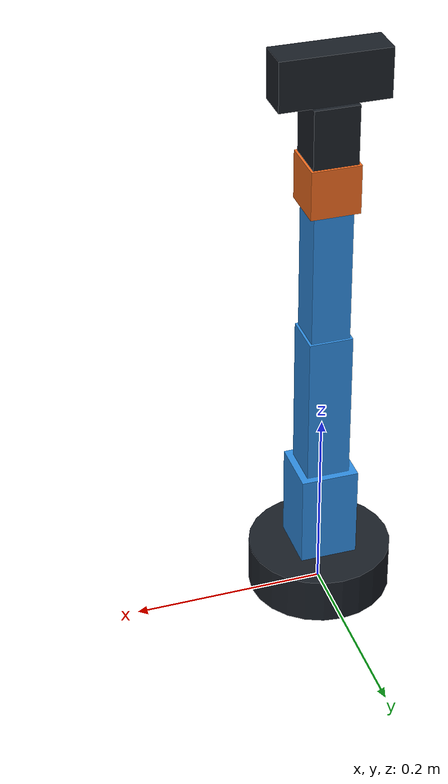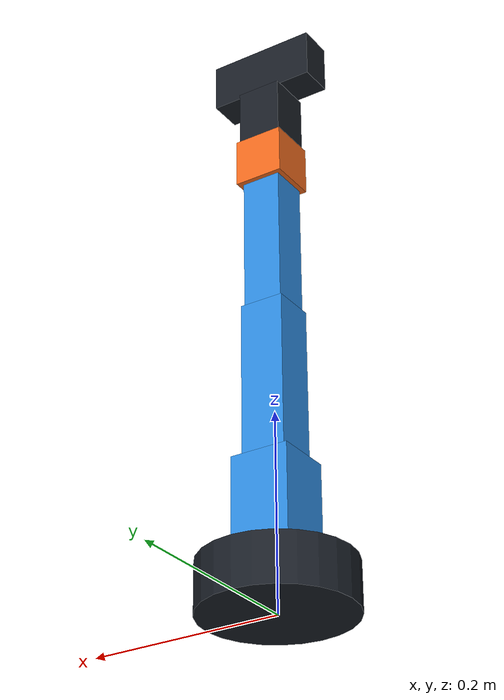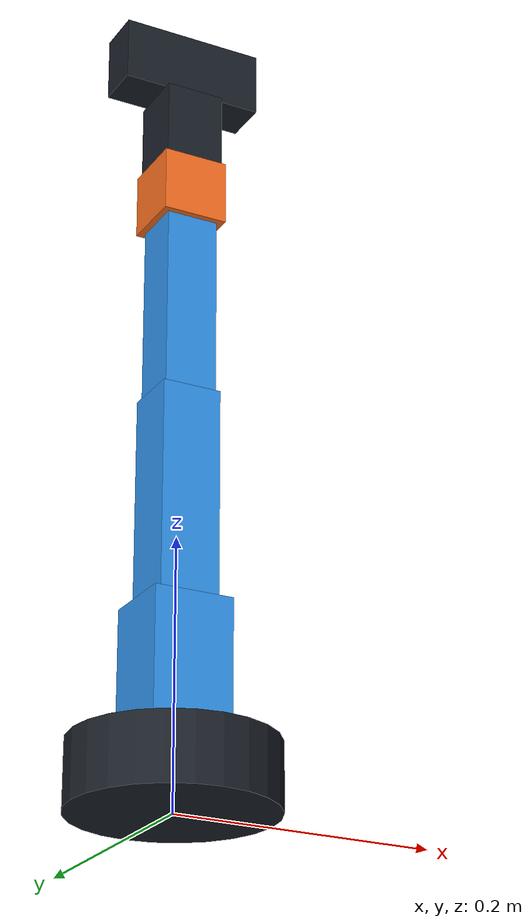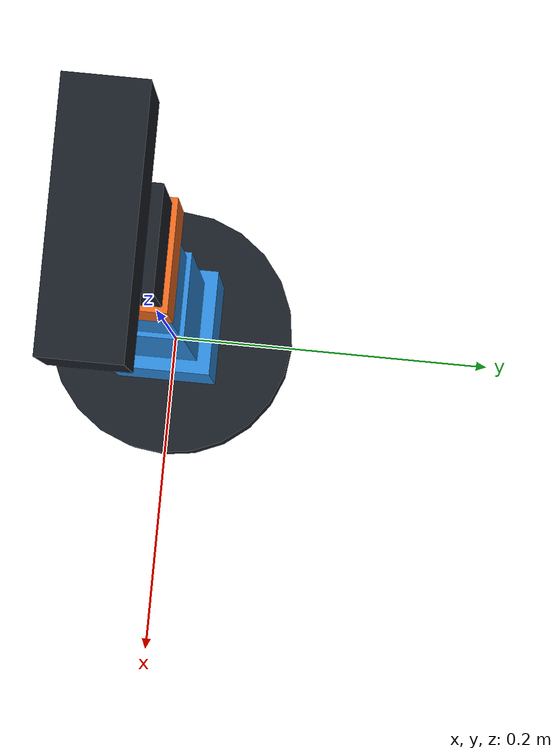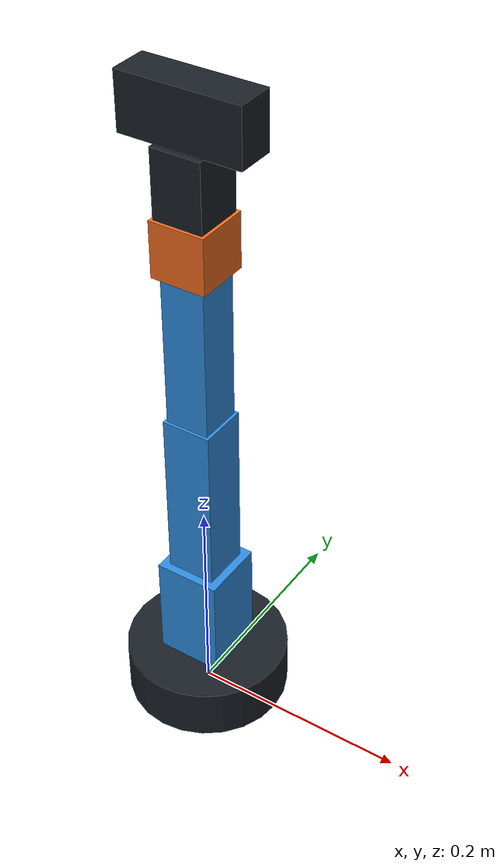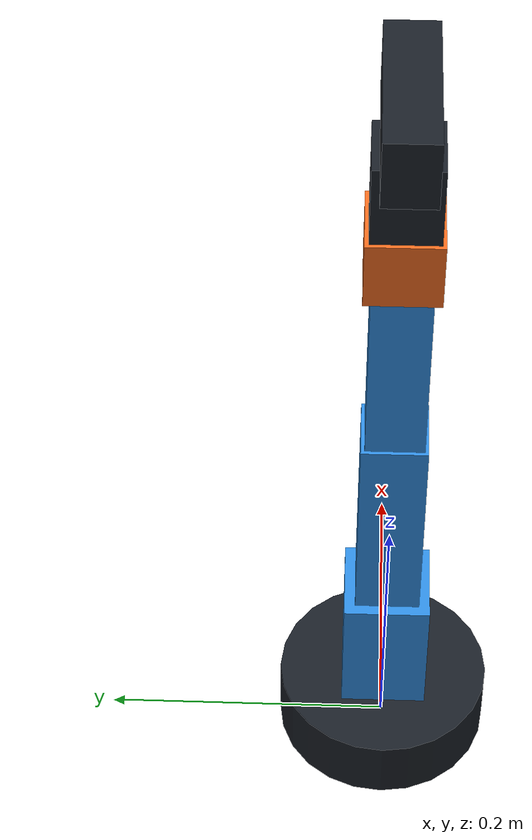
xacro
<?xml version="1.0"?>
<robot xmlns:xacro="http://www.ros.org/wiki/xacro" name="geekseek_fake_robot">
  <material name="dark"><color rgba="0.10 0.12 0.15 1"/></material>
  <material name="arm"><color rgba="0.18 0.55 0.88 1"/></material>
  <material name="accent"><color rgba="0.95 0.42 0.12 1"/></material>

  <link name="world"/>

  <xacro:macro name="link_box" params="name size xyz material">
    <link name="${name}">
      <visual><origin xyz="${xyz}"/><geometry><box size="${size}"/></geometry><material name="${material}"/></visual>
      <collision><origin xyz="${xyz}"/><geometry><box size="${size}"/></geometry></collision>
      <inertial><origin xyz="${xyz}"/><mass value="0.2"/><inertia ixx="0.001" ixy="0" ixz="0" iyy="0.001" iyz="0" izz="0.001"/></inertial>
    </link>
  </xacro:macro>

  <link name="base_link">
    <visual><origin xyz="0 0 0.025"/><geometry><cylinder radius="0.075" length="0.05"/></geometry><material name="dark"/></visual>
    <collision><origin xyz="0 0 0.025"/><geometry><cylinder radius="0.075" length="0.05"/></geometry></collision>
    <inertial><origin xyz="0 0 0.025"/><mass value="1"/><inertia ixx="0.003" ixy="0" ixz="0" iyy="0.003" iyz="0" izz="0.003"/></inertial>
  </link>
  <joint name="world_to_base" type="fixed">
    <parent link="world"/><child link="base_link"/>
  </joint>

  <xacro:link_box name="shoulder_link" size="0.06 0.06 0.10" xyz="0 0 0.05" material="arm"/>
  <joint name="base_yaw_joint" type="revolute">
    <parent link="base_link"/><child link="shoulder_link"/><origin xyz="0 0 0.05"/><axis xyz="0 0 1"/><limit lower="-2.8" upper="2.8" effort="10" velocity="1.5"/>
  </joint>

  <xacro:link_box name="upper_arm_link" size="0.045 0.045 0.16" xyz="0 0 0.08" material="arm"/>
  <joint name="shoulder_pitch_joint" type="revolute">
    <parent link="shoulder_link"/><child link="upper_arm_link"/><origin xyz="0 0 0.10"/><axis xyz="0 1 0"/><limit lower="-1.6" upper="1.6" effort="10" velocity="1.5"/>
  </joint>

  <xacro:link_box name="forearm_link" size="0.04 0.04 0.14" xyz="0 0 0.07" material="arm"/>
  <joint name="elbow_pitch_joint" type="revolute">
    <parent link="upper_arm_link"/><child link="forearm_link"/><origin xyz="0 0 0.16"/><axis xyz="0 1 0"/><limit lower="-1.7" upper="1.7" effort="10" velocity="1.5"/>
  </joint>

  <xacro:link_box name="wrist_yaw_link" size="0.05 0.05 0.05" xyz="0 0 0.025" material="accent"/>
  <joint name="wrist_yaw_joint" type="revolute">
    <parent link="forearm_link"/><child link="wrist_yaw_link"/><origin xyz="0 0 0.14"/><axis xyz="0 0 1"/><limit lower="-2.8" upper="2.8" effort="6" velocity="2"/>
  </joint>

  <xacro:link_box name="wrist_pitch_link" size="0.045 0.045 0.06" xyz="0 0 0.03" material="dark"/>
  <joint name="wrist_pitch_joint" type="revolute">
    <parent link="wrist_yaw_link"/><child link="wrist_pitch_link"/><origin xyz="0 0 0.05"/><axis xyz="0 1 0"/><limit lower="-1.5" upper="1.5" effort="6" velocity="2"/>
  </joint>

  <link name="camera_link">
    <visual><origin xyz="0 0 0.025"/><geometry><box size="0.11 0.035 0.05"/></geometry><material name="dark"/></visual>
    <collision><origin xyz="0 0 0.025"/><geometry><box size="0.11 0.035 0.05"/></geometry></collision>
    <inertial><origin xyz="0 0 0.025"/><mass value="0.15"/><inertia ixx="0.001" ixy="0" ixz="0" iyy="0.001" iyz="0" izz="0.001"/></inertial>
  </link>
  <joint name="camera_roll_joint" type="revolute">
    <parent link="wrist_pitch_link"/><child link="camera_link"/><origin xyz="0 0 0.06"/><axis xyz="1 0 0"/><limit lower="-1.57" upper="1.57" effort="4" velocity="2"/>
  </joint>
</robot>
